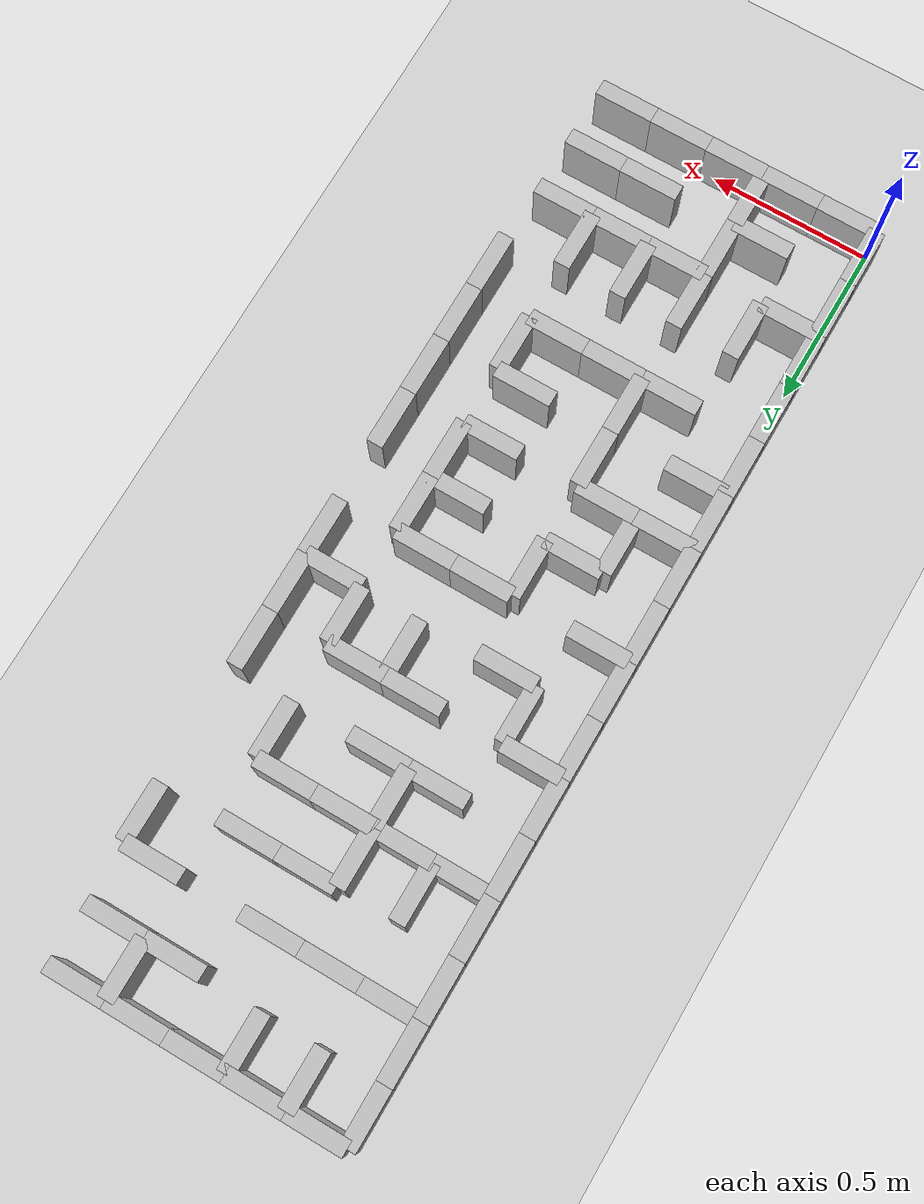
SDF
<sdf version="1.6">
 <world name="default">
  <model name="ground_plane">
   <static>1</static>
   <link name="link">
    <collision name="collision">
     <geometry><plane><normal>0 0 1</normal><size>100 100</size></plane></geometry>
     <surface><friction><ode><mu>100</mu><mu2>50</mu2></ode></friction></surface>
    </collision>
    <visual name="visual">
     <cast_shadows>0</cast_shadows>
     <geometry><plane><normal>0 0 1</normal><size>100 100</size></plane></geometry>
     <material>
      <script><uri>file://media/materials/scripts/gazebo.material</uri><name>Gazebo/Grey</name></script>
     </material>
    </visual>
   </link>
  </model>
  <model name="labyrinth_wall0">
   <pose>0.090000 0.000000 0.09 0 0 0.000000</pose>
   <link name="link">
    <inertial><mass>3.0</mass></inertial>
    <collision name="collision"><geometry><box><size>0.180 0.050 0.180</size></box></geometry></collision>
    <visual name="visual"><geometry><box><size>0.180 0.050 0.180</size></box></geometry></visual>
   </link>
   <static>true</static>
  </model>
  <model name="labyrinth_wall2">
   <pose>0.000000 0.090000 0.09 0 0 1.570796</pose>
   <link name="link">
    <inertial><mass>3.0</mass></inertial>
    <collision name="collision"><geometry><box><size>0.180 0.050 0.180</size></box></geometry></collision>
    <visual name="visual"><geometry><box><size>0.180 0.050 0.180</size></box></geometry></visual>
   </link>
   <static>true</static>
  </model>
  <model name="labyrinth_wall3">
   <pose>0.270000 0.000000 0.09 0 0 0.000000</pose>
   <link name="link">
    <inertial><mass>3.0</mass></inertial>
    <collision name="collision"><geometry><box><size>0.180 0.050 0.180</size></box></geometry></collision>
    <visual name="visual"><geometry><box><size>0.180 0.050 0.180</size></box></geometry></visual>
   </link>
   <static>true</static>
  </model>
  <model name="labyrinth_wall4">
   <pose>0.360000 0.090000 0.09 0 0 1.570796</pose>
   <link name="link">
    <inertial><mass>3.0</mass></inertial>
    <collision name="collision"><geometry><box><size>0.180 0.050 0.180</size></box></geometry></collision>
    <visual name="visual"><geometry><box><size>0.180 0.050 0.180</size></box></geometry></visual>
   </link>
   <static>true</static>
  </model>
  <model name="labyrinth_wall5">
   <pose>0.450000 0.000000 0.09 0 0 0.000000</pose>
   <link name="link">
    <inertial><mass>3.0</mass></inertial>
    <collision name="collision"><geometry><box><size>0.180 0.050 0.180</size></box></geometry></collision>
    <visual name="visual"><geometry><box><size>0.180 0.050 0.180</size></box></geometry></visual>
   </link>
   <static>true</static>
  </model>
  <model name="labyrinth_wall7">
   <pose>0.630000 0.000000 0.09 0 0 0.000000</pose>
   <link name="link">
    <inertial><mass>3.0</mass></inertial>
    <collision name="collision"><geometry><box><size>0.180 0.050 0.180</size></box></geometry></collision>
    <visual name="visual"><geometry><box><size>0.180 0.050 0.180</size></box></geometry></visual>
   </link>
   <static>true</static>
  </model>
  <model name="labyrinth_wall9">
   <pose>0.810000 0.000000 0.09 0 0 0.000000</pose>
   <link name="link">
    <inertial><mass>3.0</mass></inertial>
    <collision name="collision"><geometry><box><size>0.180 0.050 0.180</size></box></geometry></collision>
    <visual name="visual"><geometry><box><size>0.180 0.050 0.180</size></box></geometry></visual>
   </link>
   <static>true</static>
  </model>
  <model name="labyrinth_wall35">
   <pose>0.000000 0.270000 0.09 0 0 1.570796</pose>
   <link name="link">
    <inertial><mass>3.0</mass></inertial>
    <collision name="collision"><geometry><box><size>0.180 0.050 0.180</size></box></geometry></collision>
    <visual name="visual"><geometry><box><size>0.180 0.050 0.180</size></box></geometry></visual>
   </link>
   <static>true</static>
  </model>
  <model name="labyrinth_wall36">
   <pose>0.270000 0.180000 0.09 0 0 0.000000</pose>
   <link name="link">
    <inertial><mass>3.0</mass></inertial>
    <collision name="collision"><geometry><box><size>0.180 0.050 0.180</size></box></geometry></collision>
    <visual name="visual"><geometry><box><size>0.180 0.050 0.180</size></box></geometry></visual>
   </link>
   <static>true</static>
  </model>
  <model name="labyrinth_wall37">
   <pose>0.360000 0.270000 0.09 0 0 1.570796</pose>
   <link name="link">
    <inertial><mass>3.0</mass></inertial>
    <collision name="collision"><geometry><box><size>0.180 0.050 0.180</size></box></geometry></collision>
    <visual name="visual"><geometry><box><size>0.180 0.050 0.180</size></box></geometry></visual>
   </link>
   <static>true</static>
  </model>
  <model name="labyrinth_wall40">
   <pose>0.630000 0.180000 0.09 0 0 0.000000</pose>
   <link name="link">
    <inertial><mass>3.0</mass></inertial>
    <collision name="collision"><geometry><box><size>0.180 0.050 0.180</size></box></geometry></collision>
    <visual name="visual"><geometry><box><size>0.180 0.050 0.180</size></box></geometry></visual>
   </link>
   <static>true</static>
  </model>
  <model name="labyrinth_wall42">
   <pose>0.810000 0.180000 0.09 0 0 0.000000</pose>
   <link name="link">
    <inertial><mass>3.0</mass></inertial>
    <collision name="collision"><geometry><box><size>0.180 0.050 0.180</size></box></geometry></collision>
    <visual name="visual"><geometry><box><size>0.180 0.050 0.180</size></box></geometry></visual>
   </link>
   <static>true</static>
  </model>
  <model name="labyrinth_wall66">
   <pose>0.090000 0.360000 0.09 0 0 0.000000</pose>
   <link name="link">
    <inertial><mass>3.0</mass></inertial>
    <collision name="collision"><geometry><box><size>0.180 0.050 0.180</size></box></geometry></collision>
    <visual name="visual"><geometry><box><size>0.180 0.050 0.180</size></box></geometry></visual>
   </link>
   <static>true</static>
  </model>
  <model name="labyrinth_wall67">
   <pose>0.180000 0.450000 0.09 0 0 1.570796</pose>
   <link name="link">
    <inertial><mass>3.0</mass></inertial>
    <collision name="collision"><geometry><box><size>0.180 0.050 0.180</size></box></geometry></collision>
    <visual name="visual"><geometry><box><size>0.180 0.050 0.180</size></box></geometry></visual>
   </link>
   <static>true</static>
  </model>
  <model name="labyrinth_wall68">
   <pose>0.000000 0.450000 0.09 0 0 1.570796</pose>
   <link name="link">
    <inertial><mass>3.0</mass></inertial>
    <collision name="collision"><geometry><box><size>0.180 0.050 0.180</size></box></geometry></collision>
    <visual name="visual"><geometry><box><size>0.180 0.050 0.180</size></box></geometry></visual>
   </link>
   <static>true</static>
  </model>
  <model name="labyrinth_wall70">
   <pose>0.360000 0.450000 0.09 0 0 1.570796</pose>
   <link name="link">
    <inertial><mass>3.0</mass></inertial>
    <collision name="collision"><geometry><box><size>0.180 0.050 0.180</size></box></geometry></collision>
    <visual name="visual"><geometry><box><size>0.180 0.050 0.180</size></box></geometry></visual>
   </link>
   <static>true</static>
  </model>
  <model name="labyrinth_wall71">
   <pose>0.450000 0.360000 0.09 0 0 0.000000</pose>
   <link name="link">
    <inertial><mass>3.0</mass></inertial>
    <collision name="collision"><geometry><box><size>0.180 0.050 0.180</size></box></geometry></collision>
    <visual name="visual"><geometry><box><size>0.180 0.050 0.180</size></box></geometry></visual>
   </link>
   <static>true</static>
  </model>
  <model name="labyrinth_wall72">
   <pose>0.540000 0.450000 0.09 0 0 1.570796</pose>
   <link name="link">
    <inertial><mass>3.0</mass></inertial>
    <collision name="collision"><geometry><box><size>0.180 0.050 0.180</size></box></geometry></collision>
    <visual name="visual"><geometry><box><size>0.180 0.050 0.180</size></box></geometry></visual>
   </link>
   <static>true</static>
  </model>
  <model name="labyrinth_wall73">
   <pose>0.630000 0.360000 0.09 0 0 0.000000</pose>
   <link name="link">
    <inertial><mass>3.0</mass></inertial>
    <collision name="collision"><geometry><box><size>0.180 0.050 0.180</size></box></geometry></collision>
    <visual name="visual"><geometry><box><size>0.180 0.050 0.180</size></box></geometry></visual>
   </link>
   <static>true</static>
  </model>
  <model name="labyrinth_wall74">
   <pose>0.720000 0.450000 0.09 0 0 1.570796</pose>
   <link name="link">
    <inertial><mass>3.0</mass></inertial>
    <collision name="collision"><geometry><box><size>0.180 0.050 0.180</size></box></geometry></collision>
    <visual name="visual"><geometry><box><size>0.180 0.050 0.180</size></box></geometry></visual>
   </link>
   <static>true</static>
  </model>
  <model name="labyrinth_wall75">
   <pose>0.810000 0.360000 0.09 0 0 0.000000</pose>
   <link name="link">
    <inertial><mass>3.0</mass></inertial>
    <collision name="collision"><geometry><box><size>0.180 0.050 0.180</size></box></geometry></collision>
    <visual name="visual"><geometry><box><size>0.180 0.050 0.180</size></box></geometry></visual>
   </link>
   <static>true</static>
  </model>
  <model name="labyrinth_wall101">
   <pose>0.000000 0.630000 0.09 0 0 1.570796</pose>
   <link name="link">
    <inertial><mass>3.0</mass></inertial>
    <collision name="collision"><geometry><box><size>0.180 0.050 0.180</size></box></geometry></collision>
    <visual name="visual"><geometry><box><size>0.180 0.050 0.180</size></box></geometry></visual>
   </link>
   <static>true</static>
  </model>
  <model name="labyrinth_wall109">
   <pose>0.900000 0.630000 0.09 0 0 1.570796</pose>
   <link name="link">
    <inertial><mass>3.0</mass></inertial>
    <collision name="collision"><geometry><box><size>0.180 0.050 0.180</size></box></geometry></collision>
    <visual name="visual"><geometry><box><size>0.180 0.050 0.180</size></box></geometry></visual>
   </link>
   <static>true</static>
  </model>
  <model name="labyrinth_wall134">
   <pose>0.000000 0.810000 0.09 0 0 1.570796</pose>
   <link name="link">
    <inertial><mass>3.0</mass></inertial>
    <collision name="collision"><geometry><box><size>0.180 0.050 0.180</size></box></geometry></collision>
    <visual name="visual"><geometry><box><size>0.180 0.050 0.180</size></box></geometry></visual>
   </link>
   <static>true</static>
  </model>
  <model name="labyrinth_wall135">
   <pose>0.270000 0.720000 0.09 0 0 0.000000</pose>
   <link name="link">
    <inertial><mass>3.0</mass></inertial>
    <collision name="collision"><geometry><box><size>0.180 0.050 0.180</size></box></geometry></collision>
    <visual name="visual"><geometry><box><size>0.180 0.050 0.180</size></box></geometry></visual>
   </link>
   <static>true</static>
  </model>
  <model name="labyrinth_wall136">
   <pose>0.360000 0.810000 0.09 0 0 1.570796</pose>
   <link name="link">
    <inertial><mass>3.0</mass></inertial>
    <collision name="collision"><geometry><box><size>0.180 0.050 0.180</size></box></geometry></collision>
    <visual name="visual"><geometry><box><size>0.180 0.050 0.180</size></box></geometry></visual>
   </link>
   <static>true</static>
  </model>
  <model name="labyrinth_wall137">
   <pose>0.450000 0.720000 0.09 0 0 0.000000</pose>
   <link name="link">
    <inertial><mass>3.0</mass></inertial>
    <collision name="collision"><geometry><box><size>0.180 0.050 0.180</size></box></geometry></collision>
    <visual name="visual"><geometry><box><size>0.180 0.050 0.180</size></box></geometry></visual>
   </link>
   <static>true</static>
  </model>
  <model name="labyrinth_wall139">
   <pose>0.630000 0.720000 0.09 0 0 0.000000</pose>
   <link name="link">
    <inertial><mass>3.0</mass></inertial>
    <collision name="collision"><geometry><box><size>0.180 0.050 0.180</size></box></geometry></collision>
    <visual name="visual"><geometry><box><size>0.180 0.050 0.180</size></box></geometry></visual>
   </link>
   <static>true</static>
  </model>
  <model name="labyrinth_wall140">
   <pose>0.720000 0.810000 0.09 0 0 1.570796</pose>
   <link name="link">
    <inertial><mass>3.0</mass></inertial>
    <collision name="collision"><geometry><box><size>0.180 0.050 0.180</size></box></geometry></collision>
    <visual name="visual"><geometry><box><size>0.180 0.050 0.180</size></box></geometry></visual>
   </link>
   <static>true</static>
  </model>
  <model name="labyrinth_wall142">
   <pose>0.900000 0.810000 0.09 0 0 1.570796</pose>
   <link name="link">
    <inertial><mass>3.0</mass></inertial>
    <collision name="collision"><geometry><box><size>0.180 0.050 0.180</size></box></geometry></collision>
    <visual name="visual"><geometry><box><size>0.180 0.050 0.180</size></box></geometry></visual>
   </link>
   <static>true</static>
  </model>
  <model name="labyrinth_wall165">
   <pose>0.090000 0.900000 0.09 0 0 0.000000</pose>
   <link name="link">
    <inertial><mass>3.0</mass></inertial>
    <collision name="collision"><geometry><box><size>0.180 0.050 0.180</size></box></geometry></collision>
    <visual name="visual"><geometry><box><size>0.180 0.050 0.180</size></box></geometry></visual>
   </link>
   <static>true</static>
  </model>
  <model name="labyrinth_wall167">
   <pose>0.000000 0.990000 0.09 0 0 1.570796</pose>
   <link name="link">
    <inertial><mass>3.0</mass></inertial>
    <collision name="collision"><geometry><box><size>0.180 0.050 0.180</size></box></geometry></collision>
    <visual name="visual"><geometry><box><size>0.180 0.050 0.180</size></box></geometry></visual>
   </link>
   <static>true</static>
  </model>
  <model name="labyrinth_wall169">
   <pose>0.360000 0.990000 0.09 0 0 1.570796</pose>
   <link name="link">
    <inertial><mass>3.0</mass></inertial>
    <collision name="collision"><geometry><box><size>0.180 0.050 0.180</size></box></geometry></collision>
    <visual name="visual"><geometry><box><size>0.180 0.050 0.180</size></box></geometry></visual>
   </link>
   <static>true</static>
  </model>
  <model name="labyrinth_wall172">
   <pose>0.630000 0.900000 0.09 0 0 0.000000</pose>
   <link name="link">
    <inertial><mass>3.0</mass></inertial>
    <collision name="collision"><geometry><box><size>0.180 0.050 0.180</size></box></geometry></collision>
    <visual name="visual"><geometry><box><size>0.180 0.050 0.180</size></box></geometry></visual>
   </link>
   <static>true</static>
  </model>
  <model name="labyrinth_wall175">
   <pose>0.900000 0.990000 0.09 0 0 1.570796</pose>
   <link name="link">
    <inertial><mass>3.0</mass></inertial>
    <collision name="collision"><geometry><box><size>0.180 0.050 0.180</size></box></geometry></collision>
    <visual name="visual"><geometry><box><size>0.180 0.050 0.180</size></box></geometry></visual>
   </link>
   <static>true</static>
  </model>
  <model name="labyrinth_wall198">
   <pose>0.090000 1.080000 0.09 0 0 0.000000</pose>
   <link name="link">
    <inertial><mass>3.0</mass></inertial>
    <collision name="collision"><geometry><box><size>0.180 0.050 0.180</size></box></geometry></collision>
    <visual name="visual"><geometry><box><size>0.180 0.050 0.180</size></box></geometry></visual>
   </link>
   <static>true</static>
  </model>
  <model name="labyrinth_wall199">
   <pose>0.180000 1.170000 0.09 0 0 1.570796</pose>
   <link name="link">
    <inertial><mass>3.0</mass></inertial>
    <collision name="collision"><geometry><box><size>0.180 0.050 0.180</size></box></geometry></collision>
    <visual name="visual"><geometry><box><size>0.180 0.050 0.180</size></box></geometry></visual>
   </link>
   <static>true</static>
  </model>
  <model name="labyrinth_wall200">
   <pose>0.000000 1.170000 0.09 0 0 1.570796</pose>
   <link name="link">
    <inertial><mass>3.0</mass></inertial>
    <collision name="collision"><geometry><box><size>0.180 0.050 0.180</size></box></geometry></collision>
    <visual name="visual"><geometry><box><size>0.180 0.050 0.180</size></box></geometry></visual>
   </link>
   <static>true</static>
  </model>
  <model name="labyrinth_wall201">
   <pose>0.270000 1.080000 0.09 0 0 0.000000</pose>
   <link name="link">
    <inertial><mass>3.0</mass></inertial>
    <collision name="collision"><geometry><box><size>0.180 0.050 0.180</size></box></geometry></collision>
    <visual name="visual"><geometry><box><size>0.180 0.050 0.180</size></box></geometry></visual>
   </link>
   <static>true</static>
  </model>
  <model name="labyrinth_wall205">
   <pose>0.630000 1.080000 0.09 0 0 0.000000</pose>
   <link name="link">
    <inertial><mass>3.0</mass></inertial>
    <collision name="collision"><geometry><box><size>0.180 0.050 0.180</size></box></geometry></collision>
    <visual name="visual"><geometry><box><size>0.180 0.050 0.180</size></box></geometry></visual>
   </link>
   <static>true</static>
  </model>
  <model name="labyrinth_wall206">
   <pose>0.720000 1.170000 0.09 0 0 1.570796</pose>
   <link name="link">
    <inertial><mass>3.0</mass></inertial>
    <collision name="collision"><geometry><box><size>0.180 0.050 0.180</size></box></geometry></collision>
    <visual name="visual"><geometry><box><size>0.180 0.050 0.180</size></box></geometry></visual>
   </link>
   <static>true</static>
  </model>
  <model name="labyrinth_wall208">
   <pose>0.900000 1.170000 0.09 0 0 1.570796</pose>
   <link name="link">
    <inertial><mass>3.0</mass></inertial>
    <collision name="collision"><geometry><box><size>0.180 0.050 0.180</size></box></geometry></collision>
    <visual name="visual"><geometry><box><size>0.180 0.050 0.180</size></box></geometry></visual>
   </link>
   <static>true</static>
  </model>
  <model name="labyrinth_wall233">
   <pose>0.000000 1.350000 0.09 0 0 1.570796</pose>
   <link name="link">
    <inertial><mass>3.0</mass></inertial>
    <collision name="collision"><geometry><box><size>0.180 0.050 0.180</size></box></geometry></collision>
    <visual name="visual"><geometry><box><size>0.180 0.050 0.180</size></box></geometry></visual>
   </link>
   <static>true</static>
  </model>
  <model name="labyrinth_wall234">
   <pose>0.270000 1.260000 0.09 0 0 0.000000</pose>
   <link name="link">
    <inertial><mass>3.0</mass></inertial>
    <collision name="collision"><geometry><box><size>0.180 0.050 0.180</size></box></geometry></collision>
    <visual name="visual"><geometry><box><size>0.180 0.050 0.180</size></box></geometry></visual>
   </link>
   <static>true</static>
  </model>
  <model name="labyrinth_wall235">
   <pose>0.360000 1.350000 0.09 0 0 1.570796</pose>
   <link name="link">
    <inertial><mass>3.0</mass></inertial>
    <collision name="collision"><geometry><box><size>0.180 0.050 0.180</size></box></geometry></collision>
    <visual name="visual"><geometry><box><size>0.180 0.050 0.180</size></box></geometry></visual>
   </link>
   <static>true</static>
  </model>
  <model name="labyrinth_wall238">
   <pose>0.630000 1.260000 0.09 0 0 0.000000</pose>
   <link name="link">
    <inertial><mass>3.0</mass></inertial>
    <collision name="collision"><geometry><box><size>0.180 0.050 0.180</size></box></geometry></collision>
    <visual name="visual"><geometry><box><size>0.180 0.050 0.180</size></box></geometry></visual>
   </link>
   <static>true</static>
  </model>
  <model name="labyrinth_wall239">
   <pose>0.720000 1.350000 0.09 0 0 1.570796</pose>
   <link name="link">
    <inertial><mass>3.0</mass></inertial>
    <collision name="collision"><geometry><box><size>0.180 0.050 0.180</size></box></geometry></collision>
    <visual name="visual"><geometry><box><size>0.180 0.050 0.180</size></box></geometry></visual>
   </link>
   <static>true</static>
  </model>
  <model name="labyrinth_wall264">
   <pose>0.090000 1.440000 0.09 0 0 0.000000</pose>
   <link name="link">
    <inertial><mass>3.0</mass></inertial>
    <collision name="collision"><geometry><box><size>0.180 0.050 0.180</size></box></geometry></collision>
    <visual name="visual"><geometry><box><size>0.180 0.050 0.180</size></box></geometry></visual>
   </link>
   <static>true</static>
  </model>
  <model name="labyrinth_wall266">
   <pose>0.000000 1.530000 0.09 0 0 1.570796</pose>
   <link name="link">
    <inertial><mass>3.0</mass></inertial>
    <collision name="collision"><geometry><box><size>0.180 0.050 0.180</size></box></geometry></collision>
    <visual name="visual"><geometry><box><size>0.180 0.050 0.180</size></box></geometry></visual>
   </link>
   <static>true</static>
  </model>
  <model name="labyrinth_wall269">
   <pose>0.450000 1.440000 0.09 0 0 0.000000</pose>
   <link name="link">
    <inertial><mass>3.0</mass></inertial>
    <collision name="collision"><geometry><box><size>0.180 0.050 0.180</size></box></geometry></collision>
    <visual name="visual"><geometry><box><size>0.180 0.050 0.180</size></box></geometry></visual>
   </link>
   <static>true</static>
  </model>
  <model name="labyrinth_wall271">
   <pose>0.630000 1.440000 0.09 0 0 0.000000</pose>
   <link name="link">
    <inertial><mass>3.0</mass></inertial>
    <collision name="collision"><geometry><box><size>0.180 0.050 0.180</size></box></geometry></collision>
    <visual name="visual"><geometry><box><size>0.180 0.050 0.180</size></box></geometry></visual>
   </link>
   <static>true</static>
  </model>
  <model name="labyrinth_wall274">
   <pose>0.900000 1.530000 0.09 0 0 1.570796</pose>
   <link name="link">
    <inertial><mass>3.0</mass></inertial>
    <collision name="collision"><geometry><box><size>0.180 0.050 0.180</size></box></geometry></collision>
    <visual name="visual"><geometry><box><size>0.180 0.050 0.180</size></box></geometry></visual>
   </link>
   <static>true</static>
  </model>
  <model name="labyrinth_wall298">
   <pose>0.180000 1.710000 0.09 0 0 1.570796</pose>
   <link name="link">
    <inertial><mass>3.0</mass></inertial>
    <collision name="collision"><geometry><box><size>0.180 0.050 0.180</size></box></geometry></collision>
    <visual name="visual"><geometry><box><size>0.180 0.050 0.180</size></box></geometry></visual>
   </link>
   <static>true</static>
  </model>
  <model name="labyrinth_wall299">
   <pose>0.000000 1.710000 0.09 0 0 1.570796</pose>
   <link name="link">
    <inertial><mass>3.0</mass></inertial>
    <collision name="collision"><geometry><box><size>0.180 0.050 0.180</size></box></geometry></collision>
    <visual name="visual"><geometry><box><size>0.180 0.050 0.180</size></box></geometry></visual>
   </link>
   <static>true</static>
  </model>
  <model name="labyrinth_wall300">
   <pose>0.270000 1.620000 0.09 0 0 0.000000</pose>
   <link name="link">
    <inertial><mass>3.0</mass></inertial>
    <collision name="collision"><geometry><box><size>0.180 0.050 0.180</size></box></geometry></collision>
    <visual name="visual"><geometry><box><size>0.180 0.050 0.180</size></box></geometry></visual>
   </link>
   <static>true</static>
  </model>
  <model name="labyrinth_wall303">
   <pose>0.540000 1.710000 0.09 0 0 1.570796</pose>
   <link name="link">
    <inertial><mass>3.0</mass></inertial>
    <collision name="collision"><geometry><box><size>0.180 0.050 0.180</size></box></geometry></collision>
    <visual name="visual"><geometry><box><size>0.180 0.050 0.180</size></box></geometry></visual>
   </link>
   <static>true</static>
  </model>
  <model name="labyrinth_wall305">
   <pose>0.720000 1.710000 0.09 0 0 1.570796</pose>
   <link name="link">
    <inertial><mass>3.0</mass></inertial>
    <collision name="collision"><geometry><box><size>0.180 0.050 0.180</size></box></geometry></collision>
    <visual name="visual"><geometry><box><size>0.180 0.050 0.180</size></box></geometry></visual>
   </link>
   <static>true</static>
  </model>
  <model name="labyrinth_wall306">
   <pose>0.810000 1.620000 0.09 0 0 0.000000</pose>
   <link name="link">
    <inertial><mass>3.0</mass></inertial>
    <collision name="collision"><geometry><box><size>0.180 0.050 0.180</size></box></geometry></collision>
    <visual name="visual"><geometry><box><size>0.180 0.050 0.180</size></box></geometry></visual>
   </link>
   <static>true</static>
  </model>
  <model name="labyrinth_wall307">
   <pose>0.900000 1.710000 0.09 0 0 1.570796</pose>
   <link name="link">
    <inertial><mass>3.0</mass></inertial>
    <collision name="collision"><geometry><box><size>0.180 0.050 0.180</size></box></geometry></collision>
    <visual name="visual"><geometry><box><size>0.180 0.050 0.180</size></box></geometry></visual>
   </link>
   <static>true</static>
  </model>
  <model name="labyrinth_wall330">
   <pose>0.090000 1.800000 0.09 0 0 0.000000</pose>
   <link name="link">
    <inertial><mass>3.0</mass></inertial>
    <collision name="collision"><geometry><box><size>0.180 0.050 0.180</size></box></geometry></collision>
    <visual name="visual"><geometry><box><size>0.180 0.050 0.180</size></box></geometry></visual>
   </link>
   <static>true</static>
  </model>
  <model name="labyrinth_wall332">
   <pose>0.000000 1.890000 0.09 0 0 1.570796</pose>
   <link name="link">
    <inertial><mass>3.0</mass></inertial>
    <collision name="collision"><geometry><box><size>0.180 0.050 0.180</size></box></geometry></collision>
    <visual name="visual"><geometry><box><size>0.180 0.050 0.180</size></box></geometry></visual>
   </link>
   <static>true</static>
  </model>
  <model name="labyrinth_wall335">
   <pose>0.450000 1.800000 0.09 0 0 0.000000</pose>
   <link name="link">
    <inertial><mass>3.0</mass></inertial>
    <collision name="collision"><geometry><box><size>0.180 0.050 0.180</size></box></geometry></collision>
    <visual name="visual"><geometry><box><size>0.180 0.050 0.180</size></box></geometry></visual>
   </link>
   <static>true</static>
  </model>
  <model name="labyrinth_wall337">
   <pose>0.630000 1.800000 0.09 0 0 0.000000</pose>
   <link name="link">
    <inertial><mass>3.0</mass></inertial>
    <collision name="collision"><geometry><box><size>0.180 0.050 0.180</size></box></geometry></collision>
    <visual name="visual"><geometry><box><size>0.180 0.050 0.180</size></box></geometry></visual>
   </link>
   <static>true</static>
  </model>
  <model name="labyrinth_wall340">
   <pose>0.900000 1.890000 0.09 0 0 1.570796</pose>
   <link name="link">
    <inertial><mass>3.0</mass></inertial>
    <collision name="collision"><geometry><box><size>0.180 0.050 0.180</size></box></geometry></collision>
    <visual name="visual"><geometry><box><size>0.180 0.050 0.180</size></box></geometry></visual>
   </link>
   <static>true</static>
  </model>
  <model name="labyrinth_wall365">
   <pose>0.000000 2.070000 0.09 0 0 1.570796</pose>
   <link name="link">
    <inertial><mass>3.0</mass></inertial>
    <collision name="collision"><geometry><box><size>0.180 0.050 0.180</size></box></geometry></collision>
    <visual name="visual"><geometry><box><size>0.180 0.050 0.180</size></box></geometry></visual>
   </link>
   <static>true</static>
  </model>
  <model name="labyrinth_wall366">
   <pose>0.270000 1.980000 0.09 0 0 0.000000</pose>
   <link name="link">
    <inertial><mass>3.0</mass></inertial>
    <collision name="collision"><geometry><box><size>0.180 0.050 0.180</size></box></geometry></collision>
    <visual name="visual"><geometry><box><size>0.180 0.050 0.180</size></box></geometry></visual>
   </link>
   <static>true</static>
  </model>
  <model name="labyrinth_wall367">
   <pose>0.360000 2.070000 0.09 0 0 1.570796</pose>
   <link name="link">
    <inertial><mass>3.0</mass></inertial>
    <collision name="collision"><geometry><box><size>0.180 0.050 0.180</size></box></geometry></collision>
    <visual name="visual"><geometry><box><size>0.180 0.050 0.180</size></box></geometry></visual>
   </link>
   <static>true</static>
  </model>
  <model name="labyrinth_wall368">
   <pose>0.450000 1.980000 0.09 0 0 0.000000</pose>
   <link name="link">
    <inertial><mass>3.0</mass></inertial>
    <collision name="collision"><geometry><box><size>0.180 0.050 0.180</size></box></geometry></collision>
    <visual name="visual"><geometry><box><size>0.180 0.050 0.180</size></box></geometry></visual>
   </link>
   <static>true</static>
  </model>
  <model name="labyrinth_wall371">
   <pose>0.720000 2.070000 0.09 0 0 1.570796</pose>
   <link name="link">
    <inertial><mass>3.0</mass></inertial>
    <collision name="collision"><geometry><box><size>0.180 0.050 0.180</size></box></geometry></collision>
    <visual name="visual"><geometry><box><size>0.180 0.050 0.180</size></box></geometry></visual>
   </link>
   <static>true</static>
  </model>
  <model name="labyrinth_wall396">
   <pose>0.090000 2.160000 0.09 0 0 0.000000</pose>
   <link name="link">
    <inertial><mass>3.0</mass></inertial>
    <collision name="collision"><geometry><box><size>0.180 0.050 0.180</size></box></geometry></collision>
    <visual name="visual"><geometry><box><size>0.180 0.050 0.180</size></box></geometry></visual>
   </link>
   <static>true</static>
  </model>
  <model name="labyrinth_wall397">
   <pose>0.180000 2.250000 0.09 0 0 1.570796</pose>
   <link name="link">
    <inertial><mass>3.0</mass></inertial>
    <collision name="collision"><geometry><box><size>0.180 0.050 0.180</size></box></geometry></collision>
    <visual name="visual"><geometry><box><size>0.180 0.050 0.180</size></box></geometry></visual>
   </link>
   <static>true</static>
  </model>
  <model name="labyrinth_wall398">
   <pose>0.000000 2.250000 0.09 0 0 1.570796</pose>
   <link name="link">
    <inertial><mass>3.0</mass></inertial>
    <collision name="collision"><geometry><box><size>0.180 0.050 0.180</size></box></geometry></collision>
    <visual name="visual"><geometry><box><size>0.180 0.050 0.180</size></box></geometry></visual>
   </link>
   <static>true</static>
  </model>
  <model name="labyrinth_wall399">
   <pose>0.270000 2.160000 0.09 0 0 0.000000</pose>
   <link name="link">
    <inertial><mass>3.0</mass></inertial>
    <collision name="collision"><geometry><box><size>0.180 0.050 0.180</size></box></geometry></collision>
    <visual name="visual"><geometry><box><size>0.180 0.050 0.180</size></box></geometry></visual>
   </link>
   <static>true</static>
  </model>
  <model name="labyrinth_wall400">
   <pose>0.360000 2.250000 0.09 0 0 1.570796</pose>
   <link name="link">
    <inertial><mass>3.0</mass></inertial>
    <collision name="collision"><geometry><box><size>0.180 0.050 0.180</size></box></geometry></collision>
    <visual name="visual"><geometry><box><size>0.180 0.050 0.180</size></box></geometry></visual>
   </link>
   <static>true</static>
  </model>
  <model name="labyrinth_wall401">
   <pose>0.450000 2.160000 0.09 0 0 0.000000</pose>
   <link name="link">
    <inertial><mass>3.0</mass></inertial>
    <collision name="collision"><geometry><box><size>0.180 0.050 0.180</size></box></geometry></collision>
    <visual name="visual"><geometry><box><size>0.180 0.050 0.180</size></box></geometry></visual>
   </link>
   <static>true</static>
  </model>
  <model name="labyrinth_wall403">
   <pose>0.630000 2.160000 0.09 0 0 0.000000</pose>
   <link name="link">
    <inertial><mass>3.0</mass></inertial>
    <collision name="collision"><geometry><box><size>0.180 0.050 0.180</size></box></geometry></collision>
    <visual name="visual"><geometry><box><size>0.180 0.050 0.180</size></box></geometry></visual>
   </link>
   <static>true</static>
  </model>
  <model name="labyrinth_wall431">
   <pose>0.000000 2.430000 0.09 0 0 1.570796</pose>
   <link name="link">
    <inertial><mass>3.0</mass></inertial>
    <collision name="collision"><geometry><box><size>0.180 0.050 0.180</size></box></geometry></collision>
    <visual name="visual"><geometry><box><size>0.180 0.050 0.180</size></box></geometry></visual>
   </link>
   <static>true</static>
  </model>
  <model name="labyrinth_wall434">
   <pose>0.450000 2.340000 0.09 0 0 0.000000</pose>
   <link name="link">
    <inertial><mass>3.0</mass></inertial>
    <collision name="collision"><geometry><box><size>0.180 0.050 0.180</size></box></geometry></collision>
    <visual name="visual"><geometry><box><size>0.180 0.050 0.180</size></box></geometry></visual>
   </link>
   <static>true</static>
  </model>
  <model name="labyrinth_wall436">
   <pose>0.630000 2.340000 0.09 0 0 0.000000</pose>
   <link name="link">
    <inertial><mass>3.0</mass></inertial>
    <collision name="collision"><geometry><box><size>0.180 0.050 0.180</size></box></geometry></collision>
    <visual name="visual"><geometry><box><size>0.180 0.050 0.180</size></box></geometry></visual>
   </link>
   <static>true</static>
  </model>
  <model name="labyrinth_wall439">
   <pose>0.900000 2.430000 0.09 0 0 1.570796</pose>
   <link name="link">
    <inertial><mass>3.0</mass></inertial>
    <collision name="collision"><geometry><box><size>0.180 0.050 0.180</size></box></geometry></collision>
    <visual name="visual"><geometry><box><size>0.180 0.050 0.180</size></box></geometry></visual>
   </link>
   <static>true</static>
  </model>
  <model name="labyrinth_wall462">
   <pose>0.090000 2.520000 0.09 0 0 0.000000</pose>
   <link name="link">
    <inertial><mass>3.0</mass></inertial>
    <collision name="collision"><geometry><box><size>0.180 0.050 0.180</size></box></geometry></collision>
    <visual name="visual"><geometry><box><size>0.180 0.050 0.180</size></box></geometry></visual>
   </link>
   <static>true</static>
  </model>
  <model name="labyrinth_wall464">
   <pose>0.000000 2.610000 0.09 0 0 1.570796</pose>
   <link name="link">
    <inertial><mass>3.0</mass></inertial>
    <collision name="collision"><geometry><box><size>0.180 0.050 0.180</size></box></geometry></collision>
    <visual name="visual"><geometry><box><size>0.180 0.050 0.180</size></box></geometry></visual>
   </link>
   <static>true</static>
  </model>
  <model name="labyrinth_wall465">
   <pose>0.270000 2.520000 0.09 0 0 0.000000</pose>
   <link name="link">
    <inertial><mass>3.0</mass></inertial>
    <collision name="collision"><geometry><box><size>0.180 0.050 0.180</size></box></geometry></collision>
    <visual name="visual"><geometry><box><size>0.180 0.050 0.180</size></box></geometry></visual>
   </link>
   <static>true</static>
  </model>
  <model name="labyrinth_wall467">
   <pose>0.450000 2.520000 0.09 0 0 0.000000</pose>
   <link name="link">
    <inertial><mass>3.0</mass></inertial>
    <collision name="collision"><geometry><box><size>0.180 0.050 0.180</size></box></geometry></collision>
    <visual name="visual"><geometry><box><size>0.180 0.050 0.180</size></box></geometry></visual>
   </link>
   <static>true</static>
  </model>
  <model name="labyrinth_wall471">
   <pose>0.810000 2.520000 0.09 0 0 0.000000</pose>
   <link name="link">
    <inertial><mass>3.0</mass></inertial>
    <collision name="collision"><geometry><box><size>0.180 0.050 0.180</size></box></geometry></collision>
    <visual name="visual"><geometry><box><size>0.180 0.050 0.180</size></box></geometry></visual>
   </link>
   <static>true</static>
  </model>
  <model name="labyrinth_wall496">
   <pose>0.180000 2.790000 0.09 0 0 1.570796</pose>
   <link name="link">
    <inertial><mass>3.0</mass></inertial>
    <collision name="collision"><geometry><box><size>0.180 0.050 0.180</size></box></geometry></collision>
    <visual name="visual"><geometry><box><size>0.180 0.050 0.180</size></box></geometry></visual>
   </link>
   <static>true</static>
  </model>
  <model name="labyrinth_wall497">
   <pose>0.090000 2.880000 0.09 0 0 0.000000</pose>
   <link name="link">
    <inertial><mass>3.0</mass></inertial>
    <collision name="collision"><geometry><box><size>0.180 0.050 0.180</size></box></geometry></collision>
    <visual name="visual"><geometry><box><size>0.180 0.050 0.180</size></box></geometry></visual>
   </link>
   <static>true</static>
  </model>
  <model name="labyrinth_wall498">
   <pose>0.000000 2.790000 0.09 0 0 1.570796</pose>
   <link name="link">
    <inertial><mass>3.0</mass></inertial>
    <collision name="collision"><geometry><box><size>0.180 0.050 0.180</size></box></geometry></collision>
    <visual name="visual"><geometry><box><size>0.180 0.050 0.180</size></box></geometry></visual>
   </link>
   <static>true</static>
  </model>
  <model name="labyrinth_wall500">
   <pose>0.360000 2.790000 0.09 0 0 1.570796</pose>
   <link name="link">
    <inertial><mass>3.0</mass></inertial>
    <collision name="collision"><geometry><box><size>0.180 0.050 0.180</size></box></geometry></collision>
    <visual name="visual"><geometry><box><size>0.180 0.050 0.180</size></box></geometry></visual>
   </link>
   <static>true</static>
  </model>
  <model name="labyrinth_wall501">
   <pose>0.270000 2.880000 0.09 0 0 0.000000</pose>
   <link name="link">
    <inertial><mass>3.0</mass></inertial>
    <collision name="collision"><geometry><box><size>0.180 0.050 0.180</size></box></geometry></collision>
    <visual name="visual"><geometry><box><size>0.180 0.050 0.180</size></box></geometry></visual>
   </link>
   <static>true</static>
  </model>
  <model name="labyrinth_wall504">
   <pose>0.450000 2.880000 0.09 0 0 0.000000</pose>
   <link name="link">
    <inertial><mass>3.0</mass></inertial>
    <collision name="collision"><geometry><box><size>0.180 0.050 0.180</size></box></geometry></collision>
    <visual name="visual"><geometry><box><size>0.180 0.050 0.180</size></box></geometry></visual>
   </link>
   <static>true</static>
  </model>
  <model name="labyrinth_wall505">
   <pose>0.630000 2.700000 0.09 0 0 0.000000</pose>
   <link name="link">
    <inertial><mass>3.0</mass></inertial>
    <collision name="collision"><geometry><box><size>0.180 0.050 0.180</size></box></geometry></collision>
    <visual name="visual"><geometry><box><size>0.180 0.050 0.180</size></box></geometry></visual>
   </link>
   <static>true</static>
  </model>
  <model name="labyrinth_wall506">
   <pose>0.720000 2.790000 0.09 0 0 1.570796</pose>
   <link name="link">
    <inertial><mass>3.0</mass></inertial>
    <collision name="collision"><geometry><box><size>0.180 0.050 0.180</size></box></geometry></collision>
    <visual name="visual"><geometry><box><size>0.180 0.050 0.180</size></box></geometry></visual>
   </link>
   <static>true</static>
  </model>
  <model name="labyrinth_wall507">
   <pose>0.630000 2.880000 0.09 0 0 0.000000</pose>
   <link name="link">
    <inertial><mass>3.0</mass></inertial>
    <collision name="collision"><geometry><box><size>0.180 0.050 0.180</size></box></geometry></collision>
    <visual name="visual"><geometry><box><size>0.180 0.050 0.180</size></box></geometry></visual>
   </link>
   <static>true</static>
  </model>
  <model name="labyrinth_wall508">
   <pose>0.810000 2.700000 0.09 0 0 0.000000</pose>
   <link name="link">
    <inertial><mass>3.0</mass></inertial>
    <collision name="collision"><geometry><box><size>0.180 0.050 0.180</size></box></geometry></collision>
    <visual name="visual"><geometry><box><size>0.180 0.050 0.180</size></box></geometry></visual>
   </link>
   <static>true</static>
  </model>
  <model name="labyrinth_wall510">
   <pose>0.810000 2.880000 0.09 0 0 0.000000</pose>
   <link name="link">
    <inertial><mass>3.0</mass></inertial>
    <collision name="collision"><geometry><box><size>0.180 0.050 0.180</size></box></geometry></collision>
    <visual name="visual"><geometry><box><size>0.180 0.050 0.180</size></box></geometry></visual>
   </link>
   <static>true</static>
  </model>
 </world>
</sdf>
